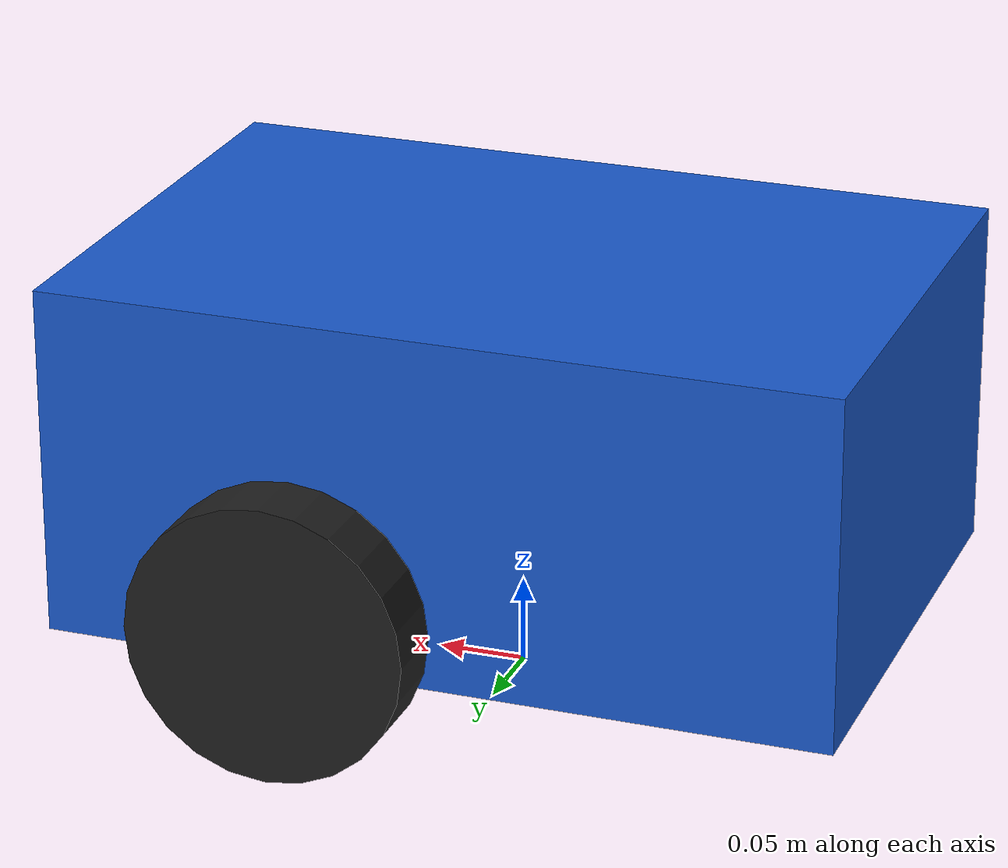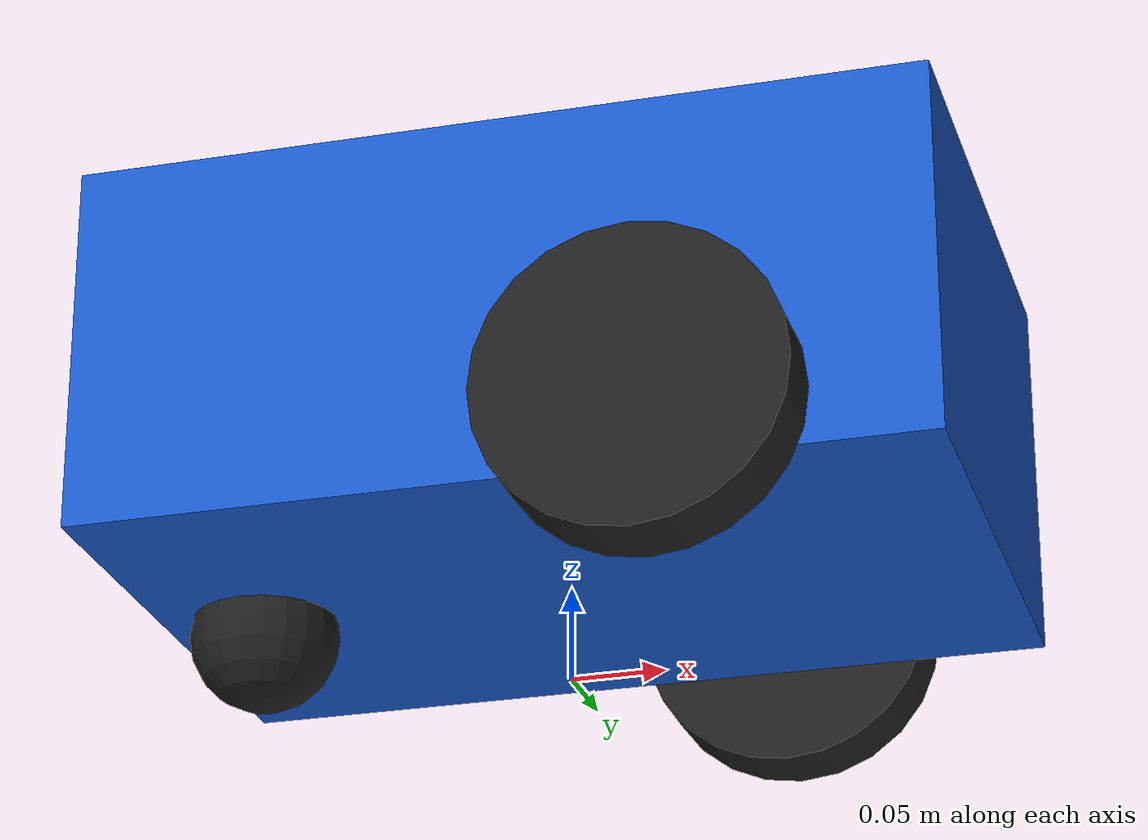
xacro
<?xml version="1.0"?>
<robot xmlns:xacro="http://www.ros.org/wiki/xacro"
       name="mobile_robot">

  <xacro:arg name="robot_name" default="mobile_robot"/>
  <xacro:arg name="frame_prefix" default=""/>
  <!-- Coordinate convention: x forward, y left, z upward. -->

  <xacro:property name="base_length" value="0.45"/>
  <xacro:property name="base_width" value="0.30"/>
  <xacro:property name="base_height" value="0.20"/>
  <xacro:property name="base_clearance" value="0.05"/>
  <xacro:property name="base_mass" value="8.0"/>

  <xacro:property name="wheel_radius" value="0.08"/>
  <xacro:property name="wheel_width" value="0.04"/>
  <xacro:property name="wheel_mass" value="0.60"/>
  <xacro:property name="wheel_x" value="0.08"/>

  <xacro:property name="caster_radius" value="0.04"/>
  <xacro:property name="caster_mass" value="0.20"/>
  <xacro:property name="caster_x" value="-0.17"/>

  <material name="blue">
    <color rgba="0.10 0.35 0.80 1.0"/>
  </material>

  <material name="dark_gray">
    <color rgba="0.12 0.12 0.12 1.0"/>
  </material>

  <!-- Ground-projected root frame used by TF and navigation. -->
  <link name="base_footprint"/>

  <joint name="base_footprint_joint" type="fixed">
    <parent link="base_footprint"/>
    <child link="base_link"/>
    <origin xyz="0 0 0" rpy="0 0 0"/>
  </joint>

  <link name="base_link">
    <visual>
      <origin
        xyz="0 0 ${base_clearance + base_height / 2.0}"
        rpy="0 0 0"/>
      <geometry>
        <box size="${base_length} ${base_width} ${base_height}"/>
      </geometry>
      <material name="blue"/>
    </visual>

    <collision>
      <origin
        xyz="0 0 ${base_clearance + base_height / 2.0}"
        rpy="0 0 0"/>
      <geometry>
        <box size="${base_length} ${base_width} ${base_height}"/>
      </geometry>
    </collision>

    <inertial>
      <origin
        xyz="0 0 ${base_clearance + base_height / 2.0}"
        rpy="0 0 0"/>
      <mass value="${base_mass}"/>
      <inertia
        ixx="${base_mass * (base_width * base_width + base_height * base_height) / 12.0}"
        ixy="0"
        ixz="0"
        iyy="${base_mass * (base_length * base_length + base_height * base_height) / 12.0}"
        iyz="0"
        izz="${base_mass * (base_length * base_length + base_width * base_width) / 12.0}"/>
    </inertial>
  </link>

  <xacro:macro name="wheel" params="side y_position">
    <link name="${side}_wheel_link">
      <visual>
        <origin xyz="0 0 0" rpy="${pi / 2.0} 0 0"/>
        <geometry>
          <cylinder radius="${wheel_radius}" length="${wheel_width}"/>
        </geometry>
        <material name="dark_gray"/>
      </visual>

      <collision>
        <origin xyz="0 0 0" rpy="${pi / 2.0} 0 0"/>
        <geometry>
          <cylinder radius="${wheel_radius}" length="${wheel_width}"/>
        </geometry>
      </collision>

      <inertial>
        <origin xyz="0 0 0" rpy="0 0 0"/>
        <mass value="${wheel_mass}"/>
        <inertia
          ixx="${wheel_mass * (3.0 * wheel_radius * wheel_radius + wheel_width * wheel_width) / 12.0}"
          ixy="0"
          ixz="0"
          iyy="${wheel_mass * wheel_radius * wheel_radius / 2.0}"
          iyz="0"
          izz="${wheel_mass * (3.0 * wheel_radius * wheel_radius + wheel_width * wheel_width) / 12.0}"/>
      </inertial>
    </link>

    <joint name="${side}_wheel_joint" type="continuous">
      <parent link="base_link"/>
      <child link="${side}_wheel_link"/>
      <origin xyz="${wheel_x} ${y_position} ${wheel_radius}" rpy="0 0 0"/>
      <axis xyz="0 1 0"/>
    </joint>
  </xacro:macro>

  <xacro:wheel
    side="left"
    y_position="${base_width / 2.0 + wheel_width / 2.0}"/>

  <xacro:wheel
    side="right"
    y_position="${-(base_width / 2.0 + wheel_width / 2.0)}"/>

  <link name="caster_link">
    <visual>
      <origin xyz="0 0 0" rpy="0 0 0"/>
      <geometry>
        <sphere radius="${caster_radius}"/>
      </geometry>
      <material name="dark_gray"/>
    </visual>

    <collision>
      <origin xyz="0 0 0" rpy="0 0 0"/>
      <geometry>
        <sphere radius="${caster_radius}"/>
      </geometry>
    </collision>

    <inertial>
      <origin xyz="0 0 0" rpy="0 0 0"/>
      <mass value="${caster_mass}"/>
      <inertia
        ixx="${2.0 * caster_mass * caster_radius * caster_radius / 5.0}"
        ixy="0"
        ixz="0"
        iyy="${2.0 * caster_mass * caster_radius * caster_radius / 5.0}"
        iyz="0"
        izz="${2.0 * caster_mass * caster_radius * caster_radius / 5.0}"/>
    </inertial>
  </link>

  <joint name="caster_joint" type="fixed">
    <parent link="base_link"/>
    <child link="caster_link"/>
    <origin xyz="${caster_x} 0 ${caster_radius}" rpy="0 0 0"/>
  </joint>
  <gazebo reference="base_link">
  <sensor name="imu_sensor" type="imu">
    <always_on>true</always_on>
    <update_rate>100</update_rate>
    <visualize>false</visualize>
    <topic>/model/$(arg robot_name)/imu</topic>
    <imu>
  <angular_velocity>
    <x>
      <noise type="gaussian">
        <mean>0.0</mean>
        <stddev>2.0e-4</stddev>
        <bias_mean>7.5e-6</bias_mean>
        <bias_stddev>8.0e-7</bias_stddev>
      </noise>
    </x>
    <y>
      <noise type="gaussian">
        <mean>0.0</mean>
        <stddev>2.0e-4</stddev>
        <bias_mean>7.5e-6</bias_mean>
        <bias_stddev>8.0e-7</bias_stddev>
      </noise>
    </y>
    <z>
      <noise type="gaussian">
        <mean>0.0</mean>
        <stddev>2.0e-4</stddev>
        <bias_mean>7.5e-6</bias_mean>
        <bias_stddev>8.0e-7</bias_stddev>
      </noise>
    </z>
  </angular_velocity>

  <linear_acceleration>
    <x>
      <noise type="gaussian">
        <mean>0.0</mean>
        <stddev>1.7e-2</stddev>
        <bias_mean>0.1</bias_mean>
        <bias_stddev>1.0e-3</bias_stddev>
      </noise>
    </x>
    <y>
      <noise type="gaussian">
        <mean>0.0</mean>
        <stddev>1.7e-2</stddev>
        <bias_mean>0.1</bias_mean>
        <bias_stddev>1.0e-3</bias_stddev>
      </noise>
    </y>
    <z>
      <noise type="gaussian">
        <mean>0.0</mean>
        <stddev>1.7e-2</stddev>
        <bias_mean>0.1</bias_mean>
        <bias_stddev>1.0e-3</bias_stddev>
      </noise>
    </z>
  </linear_acceleration>
</imu>
  </sensor>
</gazebo>
  <gazebo>
    <plugin
      filename="gz-sim-joint-state-publisher-system"
      name="gz::sim::systems::JointStatePublisher">
      <topic>/model/$(arg robot_name)/joint_state</topic>
      <joint_name>left_wheel_joint</joint_name>
      <joint_name>right_wheel_joint</joint_name>
    </plugin>

    <plugin
      filename="gz-sim-diff-drive-system"
      name="gz::sim::systems::DiffDrive">
      <left_joint>left_wheel_joint</left_joint>
      <right_joint>right_wheel_joint</right_joint>

      <wheel_separation>${base_width + wheel_width}</wheel_separation>
      <wheel_radius>${wheel_radius}</wheel_radius>

      <odom_publish_frequency>50</odom_publish_frequency>

      <topic>/model/$(arg robot_name)/cmd_vel</topic>
      <odom_topic>/model/$(arg robot_name)/odometry</odom_topic>
      <tf_topic>/model/$(arg robot_name)/tf</tf_topic>

      <frame_id>$(arg frame_prefix)odom</frame_id>
      <child_frame_id>$(arg frame_prefix)base_footprint</child_frame_id>
    </plugin>
  </gazebo>

</robot>
